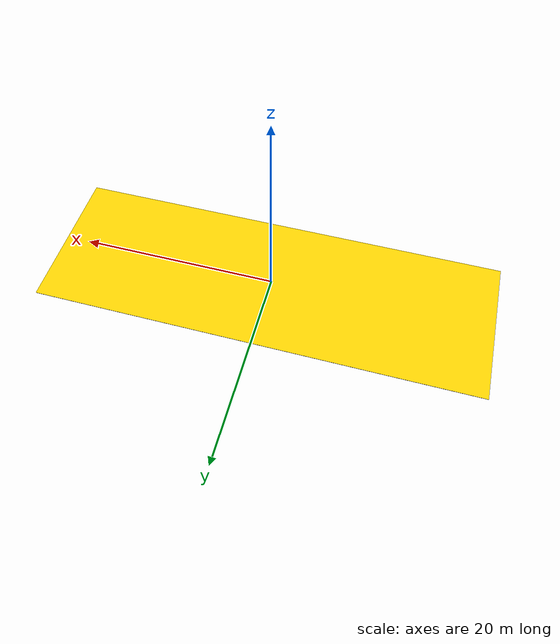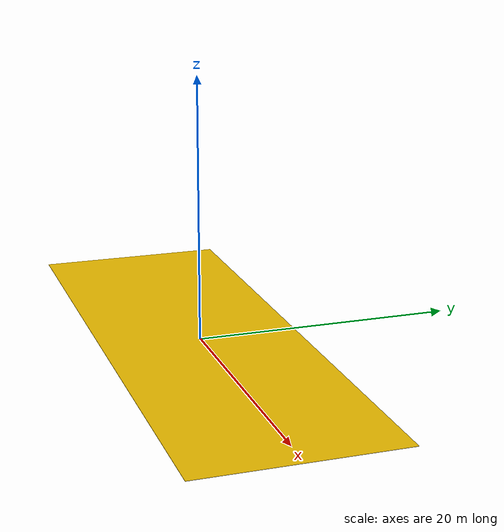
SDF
<?xml version="1.0" ?>
<sdf version="1.9">
  <model name="bump_005">
    <static>true</static>
    <link name="link">
      <collision name="collision">
        <geometry>
          <box>
            <!-- ===== 여기 두 숫자만 수정하면 가로/세로 크기가 바뀝니다 ===== -->
            <!-- 순서: 가로(도로 폭) 세로(로봇 진행방향) 높이(0.03, "0.05 이하" 규격에서 -->
            <!-- 여유를 두어 더 낮게 설정 - 확실하게 통과되도록. 0.06 이상으로는 절대 올리지 마세요) -->
            <size>45 15 0.03</size>
          </box>
        </geometry>
      </collision>
      <visual name="visual">
        <geometry>
          <box>
            <!-- collision과 반드시 같은 숫자로! -->
            <size>45 15 0.03</size>
          </box>
        </geometry>
        <material>
          <!-- 다른 방지턱들과 통일된 노란색 -->
          <ambient>1 0.75 0 1</ambient>
          <diffuse>1 0.8 0 1</diffuse>
        </material>
      </visual>
    </link>
  </model>
</sdf>
